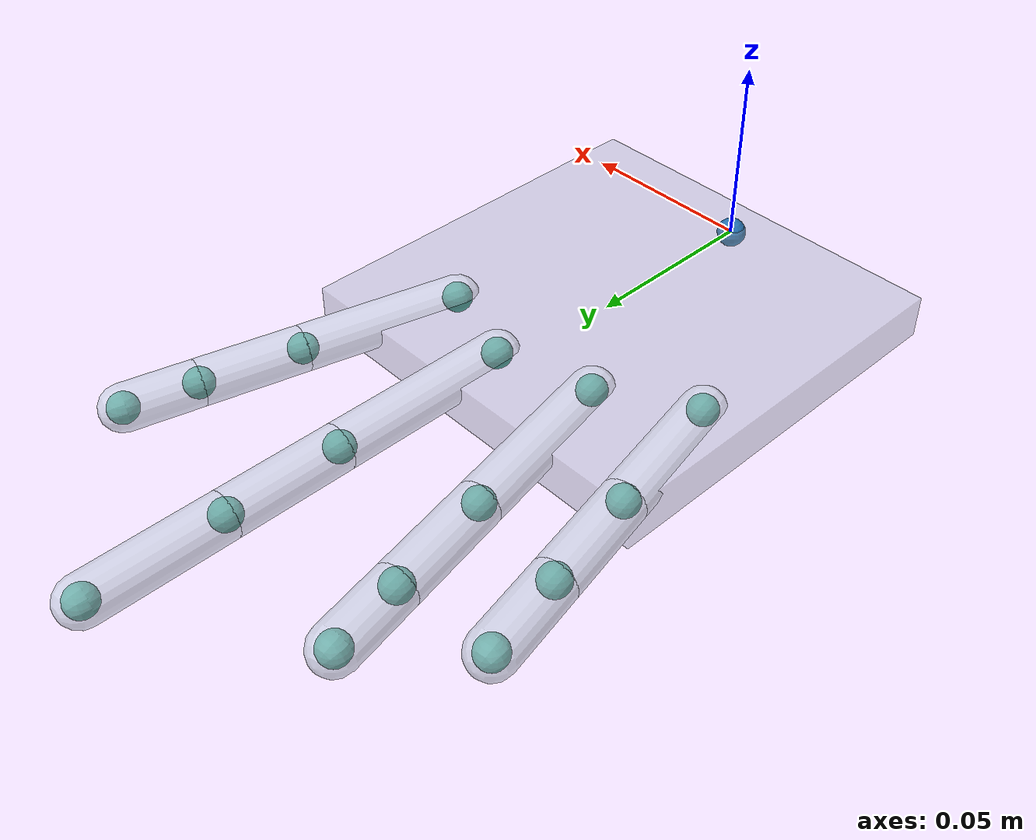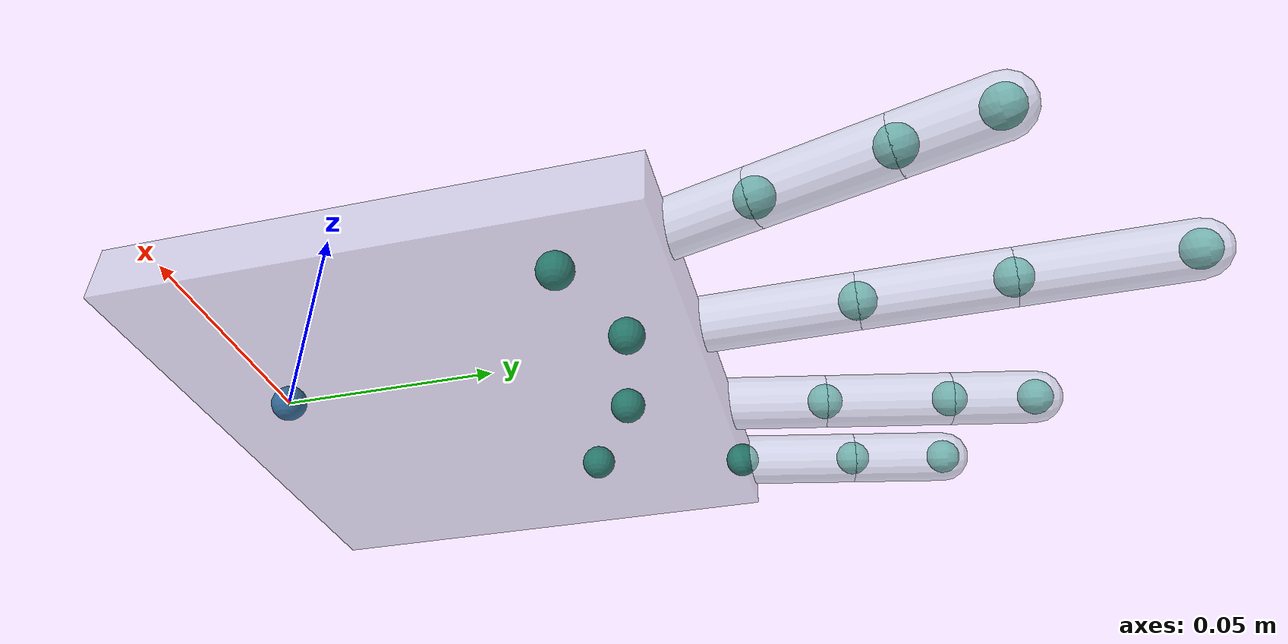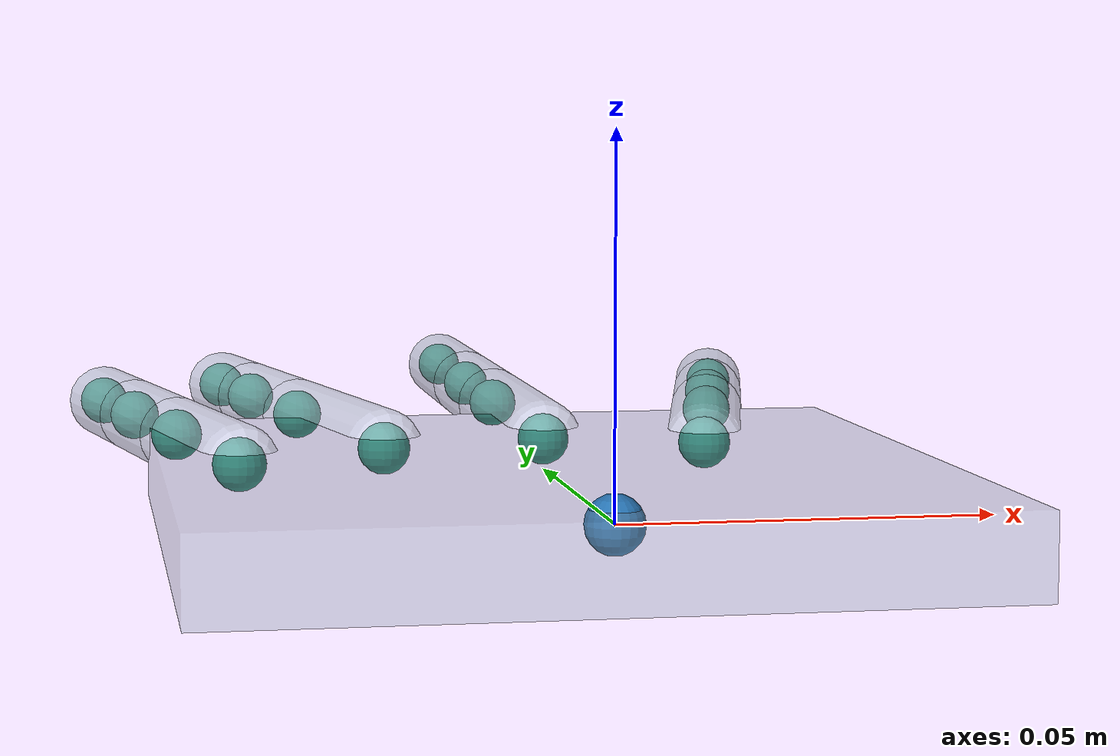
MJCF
<?xml version="1.0" ?>
<mujoco model="human_four_finger_hand">
  <compiler angle="degree" autolimits="true"/>
  <option timestep="0.002" gravity="0 0 0"/>
  <visual>
    <global offwidth="1280" offheight="960"/>
  </visual>
  <default>
    <joint type="hinge" limited="true" damping="0.02" armature="0.0001"/>
    <geom type="capsule" size="0.006" rgba="0.76 0.82 0.88 0.55" contype="0" conaffinity="0"/>
    <site type="sphere" size="0.004" rgba="0.10 0.55 0.45 1"/>
  </default>
  <worldbody>
    <body name="wrist" pos="0 0 0">
      <geom name="palm" type="box" pos="0 0.045 -0.004" size="0.055 0.055 0.006" rgba="0.55 0.62 0.70 0.35" contype="0" conaffinity="0"/>
      <site name="wrist" pos="0 0 0" rgba="0.15 0.45 0.70 1"/>
      <body name="index_mcp" pos="0.03 0.075 0" euler="0 0 -14.2666">
        <joint name="index_mcp_abd" axis="0 0 -1" range="-20.002 20.002"/>
        <inertial pos="0 0 0" mass="0.001" diaginertia="1e-06 1e-06 1e-06"/>
        <body name="index_mcp_flex_body" pos="0 0 0">
          <joint name="index_mcp_flex" axis="-1 0 0" range="0 90.0002"/>
          <site name="index_mcp" pos="0 0 0"/>
          <geom name="index_prox_geom" fromto="0 0 0 0 0.0432 0"/>
          <body name="index_pip_body" pos="0 0.0432 0">
            <joint name="index_pip" axis="-1 0 0" range="0 99.9983"/>
            <site name="index_pip" pos="0 0 0"/>
            <geom name="index_mid_geom" fromto="0 0 0 0 0.0269 0"/>
            <body name="index_dip_body" pos="0 0.0269 0">
              <joint name="index_dip" axis="-1 0 0" range="0 80.0021"/>
              <site name="index_dip" pos="0 0 0"/>
              <geom name="index_dist_geom" fromto="0 0 0 0 0.0187 0"/>
              <site name="index_tip" pos="0 0.0187 0"/>
            </body>
          </body>
        </body>
      </body>
      <body name="middle_mcp" pos="0.006 0.083 0" euler="0 0 0">
        <joint name="middle_mcp_abd" axis="0 0 -1" range="-20.002 20.002"/>
        <inertial pos="0 0 0" mass="0.001" diaginertia="1e-06 1e-06 1e-06"/>
        <body name="middle_mcp_flex_body" pos="0 0 0">
          <joint name="middle_mcp_flex" axis="-1 0 0" range="0 90.0002"/>
          <site name="middle_mcp" pos="0 0 0"/>
          <geom name="middle_prox_geom" fromto="0 0 0 0 0.049 0"/>
          <body name="middle_pip_body" pos="0 0.049 0">
            <joint name="middle_pip" axis="-1 0 0" range="0 99.9983"/>
            <site name="middle_pip" pos="0 0 0"/>
            <geom name="middle_mid_geom" fromto="0 0 0 0 0.031 0"/>
            <body name="middle_dip_body" pos="0 0.031 0">
              <joint name="middle_dip" axis="-1 0 0" range="0 80.0021"/>
              <site name="middle_dip" pos="0 0 0"/>
              <geom name="middle_dist_geom" fromto="0 0 0 0 0.035 0"/>
              <site name="middle_tip" pos="0 0.035 0"/>
            </body>
          </body>
        </body>
      </body>
      <body name="ring_mcp" pos="-0.02 0.076 0" euler="0 0 11.6883">
        <joint name="ring_mcp_abd" axis="0 0 -1" range="-20.002 20.002"/>
        <inertial pos="0 0 0" mass="0.001" diaginertia="1e-06 1e-06 1e-06"/>
        <body name="ring_mcp_flex_body" pos="0 0 0">
          <joint name="ring_mcp_flex" axis="-1 0 0" range="0 90.0002"/>
          <site name="ring_mcp" pos="0 0 0"/>
          <geom name="ring_prox_geom" fromto="0 0 0 0 0.0457 0"/>
          <body name="ring_pip_body" pos="0 0.0457 0">
            <joint name="ring_pip" axis="-1 0 0" range="0 99.9983"/>
            <site name="ring_pip" pos="0 0 0"/>
            <geom name="ring_mid_geom" fromto="0 0 0 0 0.0286 0"/>
            <body name="ring_dip_body" pos="0 0.0286 0">
              <joint name="ring_dip" axis="-1 0 0" range="0 80.0021"/>
              <site name="ring_dip" pos="0 0 0"/>
              <geom name="ring_dist_geom" fromto="0 0 0 0 0.0196 0"/>
              <site name="ring_tip" pos="0 0.0196 0"/>
            </body>
          </body>
        </body>
      </body>
      <body name="pinky_mcp" pos="-0.043 0.062 0" euler="0 0 12.0894">
        <joint name="pinky_mcp_abd" axis="0 0 -1" range="-20.002 20.002"/>
        <inertial pos="0 0 0" mass="0.001" diaginertia="1e-06 1e-06 1e-06"/>
        <body name="pinky_mcp_flex_body" pos="0 0 0">
          <joint name="pinky_mcp_flex" axis="-1 0 0" range="0 90.0002"/>
          <site name="pinky_mcp" pos="0 0 0"/>
          <geom name="pinky_prox_geom" fromto="0 0 0 0 0.0361 0"/>
          <body name="pinky_pip_body" pos="0 0.0361 0">
            <joint name="pinky_pip" axis="-1 0 0" range="0 99.9983"/>
            <site name="pinky_pip" pos="0 0 0"/>
            <geom name="pinky_mid_geom" fromto="0 0 0 0 0.0275 0"/>
            <body name="pinky_dip_body" pos="0 0.0275 0">
              <joint name="pinky_dip" axis="-1 0 0" range="0 80.0021"/>
              <site name="pinky_dip" pos="0 0 0"/>
              <geom name="pinky_dist_geom" fromto="0 0 0 0 0.0224 0"/>
              <site name="pinky_tip" pos="0 0.0224 0"/>
            </body>
          </body>
        </body>
      </body>
    </body>
  </worldbody>
  <equality>
    <joint name="index_dip_coupling" joint1="index_dip" joint2="index_pip" polycoef="0 0.6 0 0 0"/>
    <joint name="middle_dip_coupling" joint1="middle_dip" joint2="middle_pip" polycoef="0 0.6 0 0 0"/>
    <joint name="ring_dip_coupling" joint1="ring_dip" joint2="ring_pip" polycoef="0 0.6 0 0 0"/>
    <joint name="pinky_dip_coupling" joint1="pinky_dip" joint2="pinky_pip" polycoef="0 0.6 0 0 0"/>
  </equality>
  <actuator>
    <position name="index_mcp_abd_act" joint="index_mcp_abd" kp="8"/>
    <position name="index_mcp_flex_act" joint="index_mcp_flex" kp="20"/>
    <position name="index_pip_act" joint="index_pip" kp="20"/>
    <position name="middle_mcp_abd_act" joint="middle_mcp_abd" kp="8"/>
    <position name="middle_mcp_flex_act" joint="middle_mcp_flex" kp="20"/>
    <position name="middle_pip_act" joint="middle_pip" kp="20"/>
    <position name="ring_mcp_abd_act" joint="ring_mcp_abd" kp="8"/>
    <position name="ring_mcp_flex_act" joint="ring_mcp_flex" kp="20"/>
    <position name="ring_pip_act" joint="ring_pip" kp="20"/>
    <position name="pinky_mcp_abd_act" joint="pinky_mcp_abd" kp="8"/>
    <position name="pinky_mcp_flex_act" joint="pinky_mcp_flex" kp="20"/>
    <position name="pinky_pip_act" joint="pinky_pip" kp="20"/>
  </actuator>
</mujoco>
